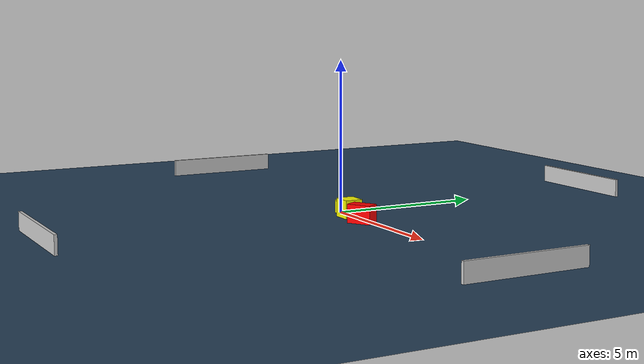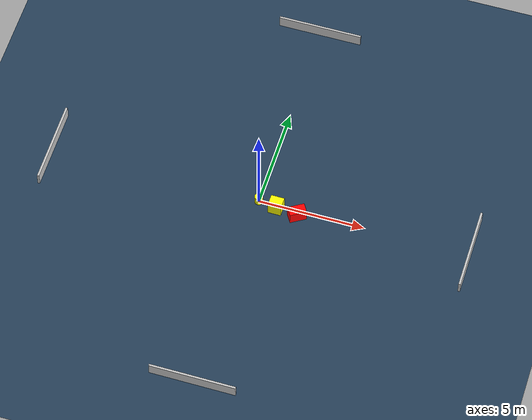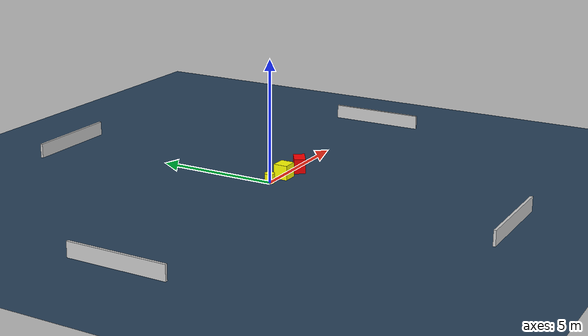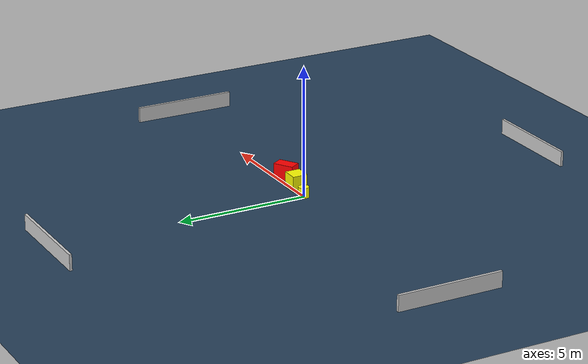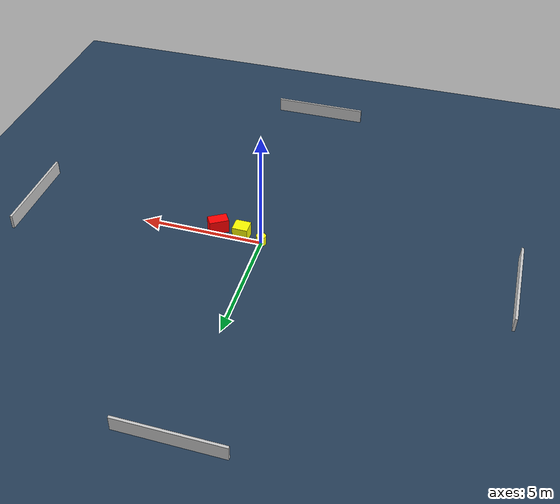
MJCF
<?xml version="1.0" ?>
<mujoco model="generated_environment">
  <option timestep="0.01" integrator="RK4" cone="elliptic"/>
  <default>
    <geom density="1"/>
  </default>
  <asset>
    <texture builtin="gradient" height="3072" name="skybox" rgb1="0.3 0.5 0.7" rgb2="0 0 0" type="skybox" width="512"/>
    <texture builtin="checker" height="300" name="groundplane" rgb1="0.2 0.3 0.4" rgb2="0.1 0.2 0.3" type="2d" width="300"/>
    <material name="groundplane" reflectance="0.2" texrepeat="5 5" texture="groundplane"/>
  </asset>
  <worldbody>
    <light dir="0 0 -1" directional="true" pos="0 0 1.5"/>
    <geom condim="3" friction="0.5 0.005 0.001" material="groundplane" name="floor" pos="0 0 0" size="0 0 0.05" type="plane"/>
    <body name="walls">
      <geom name="wall_1" condim="4" pos="-10.0 0.0 0.3" rgba="0.800000011920929 0.800000011920929 0.800000011920929 1.0" size="0.05 2.0 0.3" type="box"/>
      <geom name="wall_2" condim="4" pos="10.0 0.0 0.3" rgba="0.800000011920929 0.800000011920929 0.800000011920929 1.0" size="0.05 2.0 0.3" type="box"/>
      <geom name="wall_3" condim="4" pos="0.0 -10.0 0.3" rgba="0.800000011920929 0.800000011920929 0.800000011920929 1.0" size="2.0 0.05 0.3" type="box"/>
      <geom name="wall_4" condim="4" pos="0.0 10.0 0.3" rgba="0.800000011920929 0.800000011920929 0.800000011920929 1.0" size="2.0 0.05 0.3" type="box"/>
    </body>
    <body name="robot">
      <joint name="joint_x" type="slide" pos="0 0 0" axis="1 0 0"/>
      <joint name="joint_y" type="slide" pos="0 0 0" axis="0 1 0"/>
      <geom name="robot" type="cylinder" pos="0.0 0.0 0.2" size="0.2 0.2 0.0" mass="5.0" friction="1.0 0.005 0.0001" condim="4" rgba="1.0 1.0 0.0 1.0"/>
    </body>
    <body name="obstacle_1_movable">
      <geom name="obstacle_1_movable" condim="4" pos="0.8671551136826092 -0.16607209023883818 0.3" euler="0 0 89.31231244924345" friction="0.0 0.005 0.001" rgba="1.0 1.0 0.0 1.0" size="0.29076478777851245 0.3145359075697533 0.3" type="box" mass="0.1"/>
      <joint type="free"/>
    </body>
    <body name="obstacle_2_static">
      <geom name="obstacle_2_static" condim="4" pos="1.908517439832187 -0.29485107482079576 0.3" euler="0 0 31.724658835331088" friction="0.0 0.005 0.001" rgba="1.0 0.0 0.0 1.0" size="0.39822542155352403 0.23447904849402035 0.3" type="box"/>
    </body>
  </worldbody>
  <actuator>
    <motor name="actuator_x" joint="joint_x" gear="1" ctrlrange="-1 1"/>
    <motor name="actuator_y" joint="joint_y" gear="1" ctrlrange="-1 1"/>
  </actuator>
</mujoco>
